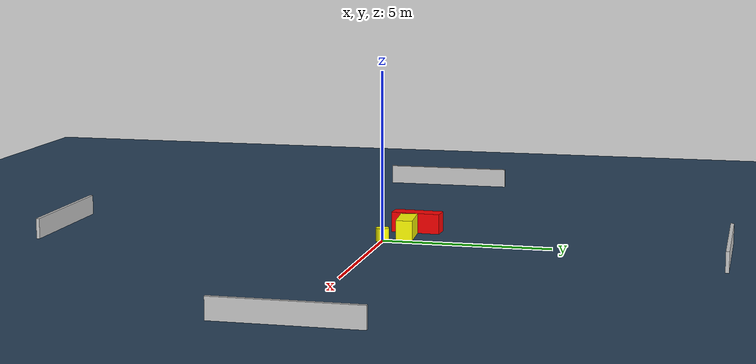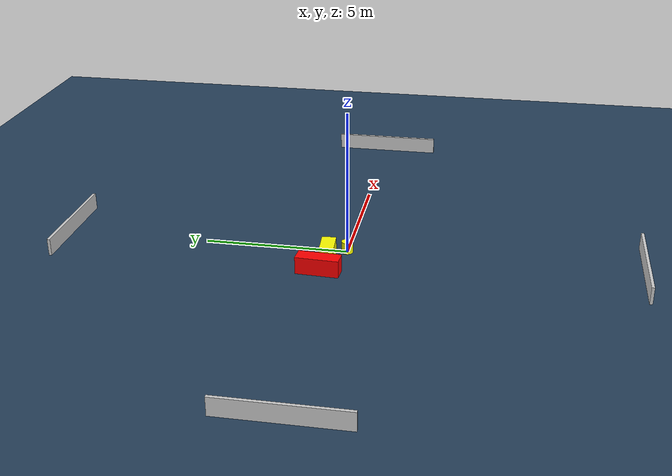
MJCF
<?xml version="1.0" ?>
<mujoco model="generated_environment">
  <option timestep="0.01" integrator="RK4" cone="elliptic"/>
  <default>
    <geom density="1"/>
  </default>
  <asset>
    <texture builtin="gradient" height="3072" name="skybox" rgb1="0.3 0.5 0.7" rgb2="0 0 0" type="skybox" width="512"/>
    <texture builtin="checker" height="300" name="groundplane" rgb1="0.2 0.3 0.4" rgb2="0.1 0.2 0.3" type="2d" width="300"/>
    <material name="groundplane" reflectance="0.2" texrepeat="5 5" texture="groundplane"/>
  </asset>
  <worldbody>
    <light dir="0 0 -1" directional="true" pos="0 0 1.5"/>
    <geom condim="3" friction="0.5 0.005 0.001" material="groundplane" name="floor" pos="0 0 0" size="0 0 0.05" type="plane"/>
    <body name="walls">
      <geom name="wall_1" condim="4" pos="-10.0 0.0 0.3" rgba="0.800000011920929 0.800000011920929 0.800000011920929 1.0" size="0.05 2.0 0.3" type="box"/>
      <geom name="wall_2" condim="4" pos="10.0 0.0 0.3" rgba="0.800000011920929 0.800000011920929 0.800000011920929 1.0" size="0.05 2.0 0.3" type="box"/>
      <geom name="wall_3" condim="4" pos="0.0 -10.0 0.3" rgba="0.800000011920929 0.800000011920929 0.800000011920929 1.0" size="2.0 0.05 0.3" type="box"/>
      <geom name="wall_4" condim="4" pos="0.0 10.0 0.3" rgba="0.800000011920929 0.800000011920929 0.800000011920929 1.0" size="2.0 0.05 0.3" type="box"/>
    </body>
    <body name="robot">
      <joint name="joint_x" type="slide" pos="0 0 0" axis="1 0 0"/>
      <joint name="joint_y" type="slide" pos="0 0 0" axis="0 1 0"/>
      <geom name="robot" type="cylinder" pos="0.0 0.0 0.2" size="0.2 0.2 0.0" mass="5.0" friction="1.0 0.005 0.0001" condim="4" rgba="1.0 1.0 0.0 1.0"/>
    </body>
    <body name="obstacle_1_movable">
      <geom name="obstacle_1_movable" condim="4" pos="-0.7314823393096166 0.561276694175187 0.3" euler="0 0 274.443283521556" friction="0.0 0.005 0.001" rgba="1.0 1.0 0.0 1.0" size="0.2469582380798825 0.5782349389654595 0.3" type="box" mass="0.1"/>
      <joint type="free"/>
    </body>
    <body name="obstacle_2_static">
      <geom name="obstacle_2_static" condim="4" pos="-1.6496278814569885 0.6920019968820533 0.3" euler="0 0 86.92034003834789" friction="0.0 0.005 0.001" rgba="1.0 0.0 0.0 1.0" size="0.7385136580283018 0.27068712400630923 0.3" type="box"/>
    </body>
  </worldbody>
  <actuator>
    <motor name="actuator_x" joint="joint_x" gear="1" ctrlrange="-1 1"/>
    <motor name="actuator_y" joint="joint_y" gear="1" ctrlrange="-1 1"/>
  </actuator>
</mujoco>
